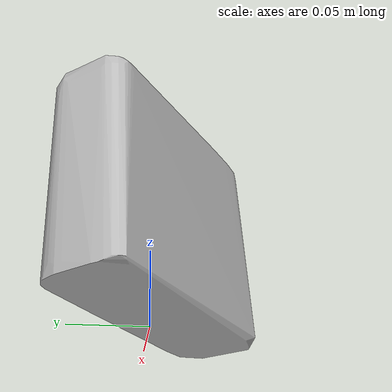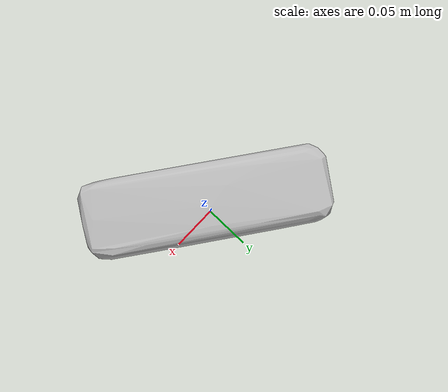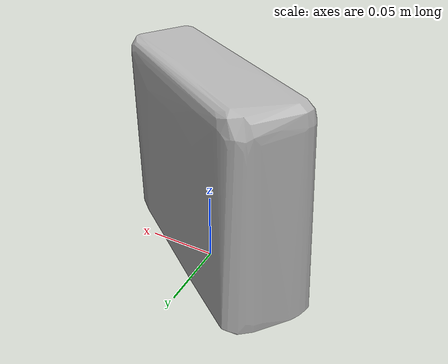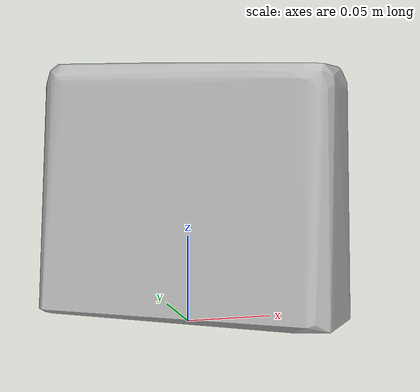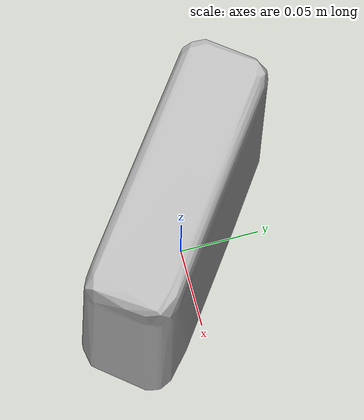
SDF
<?xml version='1.0'?>
<sdf version="1.4">
  <model name="nutrigrain_harvest_country_strawberry">
    <static>false</static>
    <link name="link">
      <inertial>
        <pose>0.0023762421612296184 -0.004447455592000367 0.07485682432836545 1.564856497895058 -0.028777016483100076 -2.1943471284744995</pose>
        <mass>0.13525743348737762</mass>
        <inertia>
          <ixx>0.0005425143403639176</ixx>
          <ixy>7.91269748537951e-23</ixy>
          <ixz>1.9260142344196202e-19</ixz>
          <iyy>0.00035304889569659064</iyy>
          <iyz>-2.637997213672719e-21</iyz>
          <izz>0.0002603199783534972</izz>
        </inertia>
      </inertial>
      <collision name="collision">
        <geometry>
          <mesh>
            <!-- Use a downsampled mesh for collisions -->
            <uri>model:///nutrigrain_harvest_country_strawberry/nutrigrain_harvest_country_strawberry_250_collision.obj</uri>
	        </mesh>
        </geometry>
        <surface>
      </surface>
      </collision>
      <visual name="visual">
        <geometry>
          <mesh>
            <uri>model:///nutrigrain_harvest_country_strawberry/optimized_tsdf_texture_mapped_mesh.obj</uri>
	        </mesh>
        </geometry>
        <material>
          <script>
            <uri>model:///nutrigrain_harvest_country_strawberry/nutrigrain_harvest_country_strawberry.material</uri>
            <name>nutrigrain_harvest_country_strawberry</name>
          </script>
        </material>
      </visual>
    </link>
  </model>
</sdf>
